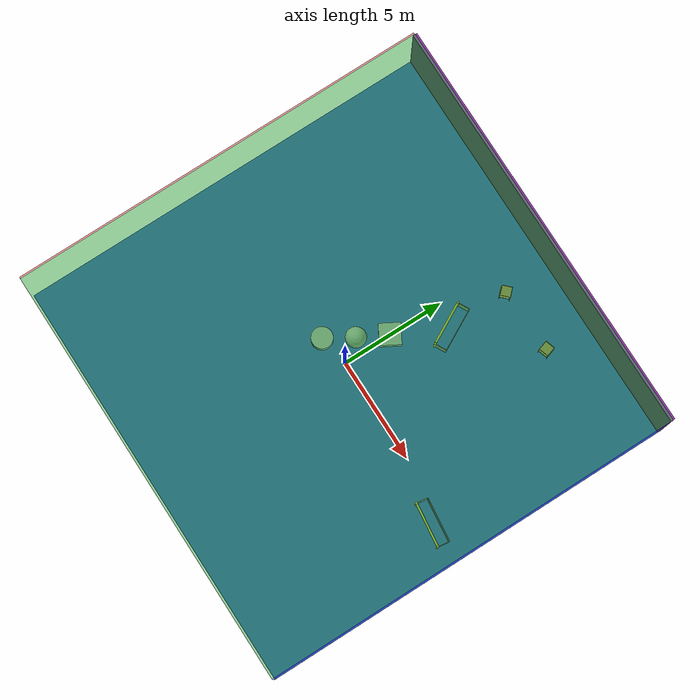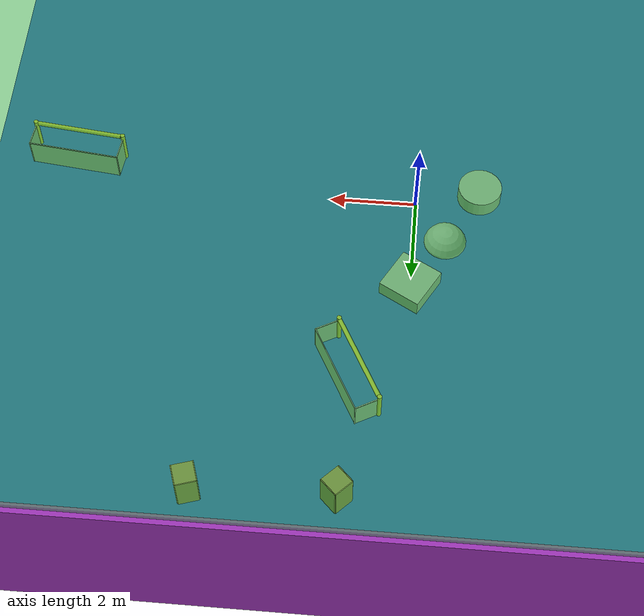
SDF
<sdf version="1.4">
 <world name="default">
  <physics type="ode">
   <max_step_size>0.001</max_step_size>
   <real_time_factor>1</real_time_factor>
   <real_time_update_rate>1000</real_time_update_rate>
   <gravity>0 0 -9.8</gravity>
  </physics>
  <scene><ambient>0.4 0.4 0.4 1</ambient><background>0.7 0.7 0.7 1</background><shadows>1</shadows></scene>
  <model name="Surrounding">
   <static>1</static>
   <link name="Ceiling">
    <collision name="Ceiling_Collision"><geometry><box><size>20 20 0.1</size></box></geometry></collision>
    <visual name="Ceiling_Visual">
     <geometry><box><size>20 20 0.1</size></box></geometry>
     <material>
      <script><uri>file://media/materials/scripts/gazebo.material</uri><name>Gazebo/GreenTransparent</name></script>
     </material>
    </visual>
    <pose>0 0 4.05 0 0 0</pose>
   </link>
   <link name="Wall_South">
    <collision name="Wall_South_Collision">
     <geometry><box><size>20 0 4</size></box></geometry>
     <pose>0 0 2 0 -0 0</pose>
    </collision>
    <visual name="Wall_South_Visual">
     <pose>0 0 2 0 -0 0</pose>
     <geometry><box><size>20 0 4</size></box></geometry>
     <material>
      <script><uri>file://media/materials/scripts/gazebo.material</uri><name>Gazebo/GreyTransparent</name></script>
     </material>
    </visual>
    <velocity_decay><linear>0</linear><angular>0</angular></velocity_decay>
    <pose>0 -10 0 0 -0 0</pose>
   </link>
   <link name="Wall_East">
    <collision name="Wall_21_Collision">
     <geometry><box><size>20 0 4</size></box></geometry>
     <pose>0 0 2 0 -0 0</pose>
    </collision>
    <visual name="Wall_21_Visual">
     <pose>0 0 2 0 -0 0</pose>
     <geometry><box><size>20 0 4</size></box></geometry>
     <material>
      <script><uri>file://media/materials/scripts/gazebo.material</uri><name>Gazebo/BlueTransparent</name></script>
     </material>
    </visual>
    <velocity_decay><linear>0</linear><angular>0</angular></velocity_decay>
    <pose>10 0 0 0 -0 1.5708</pose>
   </link>
   <link name="Wall_North">
    <collision name="Wall_22_Collision">
     <geometry><box><size>20 0.2 4</size></box></geometry>
     <pose>0 0 2 0 -0 0</pose>
    </collision>
    <visual name="Wall_22_Visual">
     <pose>0 0 2 0 -0 0</pose>
     <geometry><box><size>20 0.2 4</size></box></geometry>
     <material>
      <script><uri>file://media/materials/scripts/gazebo.material</uri><name>Gazebo/PurpleGlow</name></script>
     </material>
    </visual>
    <velocity_decay><linear>0</linear><angular>0</angular></velocity_decay>
    <pose>0 10 0 0 -0 0</pose>
   </link>
   <link name="Wall_West">
    <collision name="Wall_23_Collision">
     <geometry><box><size>20 0.2 4</size></box></geometry>
     <pose>0 0 2 0 -0 0</pose>
    </collision>
    <visual name="Wall_23_Visual">
     <pose>0 0 2 0 -0 0</pose>
     <geometry><box><size>20 0.2 4</size></box></geometry>
     <material>
      <script><uri>file://media/materials/scripts/gazebo.material</uri><name>Gazebo/RedTransparent</name></script>
     </material>
    </visual>
    <velocity_decay><linear>0</linear><angular>0</angular></velocity_decay>
    <pose>-10 0 0 0 0 -1.5708</pose>
   </link>
   <link name="Ground_link">
    <collision name="collision">
     <pose>0 0 .05 0 -0 0</pose>
     <geometry><box><size>20 20 0.1</size></box></geometry>
    </collision>
    <visual name="visual">
     <pose>0 0 .05 0 -0 0</pose>
     <geometry><box><size>20 20 0.1</size></box></geometry>
     <material>
      <script><uri>file://media/materials/scripts/gazebo.material</uri><name>Gazebo/BlueGlow</name></script>
     </material>
    </visual>
   </link>
   <static>1</static>
  </model>
  <spherical_coordinates>
   <surface_model>EARTH_WGS84</surface_model>
   <latitude_deg>0</latitude_deg>
   <longitude_deg>0</longitude_deg>
   <elevation>0</elevation>
   <heading_deg>0</heading_deg>
  </spherical_coordinates>
  <light name="lightball_0" type="diffuse">
   <diffuse>0.8 0.8 0.8 1</diffuse>
   <specular>0.2 0.2 0.2 1</specular>
   <attenuation>
    <range>100</range>
    <constant>0.7</constant>
    <linear>0.01</linear>
    <quadratic>0.001</quadratic>
   </attenuation>
   <direction>-0.5 0.1 -0.9</direction>
   <pose>6.0759026033 2.29696041028 1.79981327166 0 0 0</pose>
  </light>
  <light name="lightball_1" type="diffuse">
   <diffuse>0.8 0.8 0.8 1</diffuse>
   <specular>0.2 0.2 0.2 1</specular>
   <attenuation>
    <range>100</range>
    <constant>0.7</constant>
    <linear>0.01</linear>
    <quadratic>0.001</quadratic>
   </attenuation>
   <direction>-0.5 0.1 -0.9</direction>
   <pose>7.67446962767 5.42035108888 3.78124582337 0 0 0</pose>
  </light>
  <light name="lightball_2" type="diffuse">
   <diffuse>0.8 0.8 0.8 1</diffuse>
   <specular>0.2 0.2 0.2 1</specular>
   <attenuation>
    <range>100</range>
    <constant>0.7</constant>
    <linear>0.01</linear>
    <quadratic>0.001</quadratic>
   </attenuation>
   <direction>-0.5 0.1 -0.9</direction>
   <pose>3.18357127409 8.82662076402 2.27872426036 0 0 0</pose>
  </light>
  <light name="lightball_3" type="diffuse">
   <diffuse>0.8 0.8 0.8 1</diffuse>
   <specular>0.2 0.2 0.2 1</specular>
   <attenuation>
    <range>100</range>
    <constant>0.7</constant>
    <linear>0.01</linear>
    <quadratic>0.001</quadratic>
   </attenuation>
   <direction>-0.5 0.1 -0.9</direction>
   <pose>7.27601555481 8.59015304522 0.536431728781 0 0 0</pose>
  </light>
  <light name="lightball_4" type="diffuse">
   <diffuse>0.8 0.8 0.8 1</diffuse>
   <specular>0.2 0.2 0.2 1</specular>
   <attenuation>
    <range>100</range>
    <constant>0.7</constant>
    <linear>0.01</linear>
    <quadratic>0.001</quadratic>
   </attenuation>
   <direction>-0.5 0.1 -0.9</direction>
   <pose>-6.49637611273 6.70317273196 1.80610456736 0 0 0</pose>
  </light>
  <light name="lightball_5" type="diffuse">
   <diffuse>0.8 0.8 0.8 1</diffuse>
   <specular>0.2 0.2 0.2 1</specular>
   <attenuation>
    <range>100</range>
    <constant>0.7</constant>
    <linear>0.01</linear>
    <quadratic>0.001</quadratic>
   </attenuation>
   <direction>-0.5 0.1 -0.9</direction>
   <pose>5.00554626256 -6.04173082535 2.10141879803 0 0 0</pose>
  </light>
  <light name="lightball_6" type="diffuse">
   <diffuse>0.8 0.8 0.8 1</diffuse>
   <specular>0.2 0.2 0.2 1</specular>
   <attenuation>
    <range>100</range>
    <constant>0.7</constant>
    <linear>0.01</linear>
    <quadratic>0.001</quadratic>
   </attenuation>
   <direction>-0.5 0.1 -0.9</direction>
   <pose>-7.99458734951 4.98549128736 0.70021182449 0 0 0</pose>
  </light>
  <light name="lightball_7" type="diffuse">
   <diffuse>0.8 0.8 0.8 1</diffuse>
   <specular>0.2 0.2 0.2 1</specular>
   <attenuation>
    <range>100</range>
    <constant>0.7</constant>
    <linear>0.01</linear>
    <quadratic>0.001</quadratic>
   </attenuation>
   <direction>-0.5 0.1 -0.9</direction>
   <pose>-3.87856470278 6.24500160798 2.03639824927 0 0 0</pose>
  </light>
  <light name="lightball_8" type="diffuse">
   <diffuse>0.8 0.8 0.8 1</diffuse>
   <specular>0.2 0.2 0.2 1</specular>
   <attenuation>
    <range>100</range>
    <constant>0.7</constant>
    <linear>0.01</linear>
    <quadratic>0.001</quadratic>
   </attenuation>
   <direction>-0.5 0.1 -0.9</direction>
   <pose>4.26289737565 8.99623553917 0.934019683209 0 0 0</pose>
  </light>
  <light name="lightball_9" type="diffuse">
   <diffuse>0.8 0.8 0.8 1</diffuse>
   <specular>0.2 0.2 0.2 1</specular>
   <attenuation>
    <range>100</range>
    <constant>0.7</constant>
    <linear>0.01</linear>
    <quadratic>0.001</quadratic>
   </attenuation>
   <direction>-0.5 0.1 -0.9</direction>
   <pose>-6.13231194599 -8.61888571583 1.1078669294 0 0 0</pose>
  </light>
  <include>
   <uri>model://textured_shapes</uri>
   <pose>-0.719859742002 1.02923899064 0 0 0 2.62849479199</pose>
  </include>
  <include>
   <uri>model://robocup_3Dsim_goal</uri>
   <pose>1.00128064426 4.65524165303 0 0 0 0.492608062029</pose>
  </include>
  <include><uri>model://cabinet</uri><pose>1.24274163983 7.61149760342 0 0 0 2.35805008442</pose></include>
  <include><uri>model://cabinet</uri><pose>4.33439870261 7.70660784551 0 0 0 1.88045036211</pose></include>
  <include>
   <uri>model://robocup_3Dsim_goal</uri>
   <pose>7.96833093583 -0.896575001746 0 0 0 1.4555697608</pose>
  </include>
 </world>
</sdf>

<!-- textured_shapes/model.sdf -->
<sdf version="1.6">
  <model name="textured_shapes">
    <pose>0 0 0.5 0 0 0</pose>
    <link name="box">
      <pose>0 -1.5 0 0 0 0</pose>
      <collision name="collision">
        <geometry>
          <box>
            <size>1 1 1</size>
          </box>
        </geometry>
      </collision>
      <visual name="visual">
        <geometry>
          <box>
            <size>1 1 1</size>
          </box>
        </geometry>
        <material>
          <script>
            <uri>model://../model_source/models/textured_shapes/materials/scripts</uri>
            <uri>model://../model_source/models/textured_shapes/materials/textures</uri>
            <name>TexturedShape/Squares</name>
          </script>
        </material>
      </visual>
    </link>
    <link name="sphere">
      <collision name="collision">
        <geometry>
          <sphere>
            <radius>0.5</radius>
          </sphere>
        </geometry>
      </collision>
      <visual name="visual">
        <geometry>
          <sphere>
            <radius>0.5</radius>
          </sphere>
        </geometry>
        <material>
          <script>
            <uri>model://../model_source/models/textured_shapes/materials/scripts</uri>
            <uri>model://../model_source/models/textured_shapes/materials/textures</uri>
            <name>TexturedShape/Squares</name>
          </script>
        </material>
      </visual>
    </link>
    <link name="cylinder">
      <pose>0 1.5 0 0 0 0</pose>
      <collision name="collision">
        <geometry>
          <cylinder>
            <radius>0.5</radius>
            <length>1</length>
          </cylinder>
        </geometry>
      </collision>
      <visual name="visual">
        <geometry>
          <cylinder>
            <radius>0.5</radius>
            <length>1</length>
          </cylinder>
        </geometry>
        <material>
          <script>
            <uri>model://../model_source/models/textured_shapes/materials/scripts</uri>
            <uri>model://../model_source/models/textured_shapes/materials/textures</uri>
            <name>TexturedShape/Squares</name>
          </script>
        </material>
      </visual>
    </link>
  </model>
</sdf>

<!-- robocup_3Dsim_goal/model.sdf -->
<sdf version="1.5">
  <model name="robocup_3d_goal">
    <static>true</static>
    <link name="left_post">
      <pose>0 1.05 0.45 0 0 0</pose>
      <collision name="collision">
        <geometry>
          <cylinder>
            <radius>0.05</radius>
            <length>0.9</length>
          </cylinder>
        </geometry>
      </collision>
      <visual name="visual">
        <geometry>
          <cylinder>
            <radius>0.05</radius>
            <length>0.9</length>
          </cylinder>
        </geometry>
        <material>
          <script>
            <uri>file://media/materials/scripts/gazebo.material</uri>
            <name>Gazebo/ZincYellow</name>
          </script>
        </material>
      </visual>
    </link>
    <link name="left_support_horiz_lower">
      <pose>0.30 1.05 0.01 0 0 0</pose>
      <collision name="collision">
        <geometry>
          <box>
            <size>0.50 0.02 0.02</size>
          </box>
        </geometry>
      </collision>
      <visual name="visual">
        <geometry>
          <box>
            <size>0.50 0.02 0.02</size>
          </box>
        </geometry>
        <material>
          <script>
            <uri>file://media/materials/scripts/gazebo.material</uri>
            <name>Gazebo/White</name>
          </script>
        </material>
      </visual>
    </link>
    <link name="left_support_horiz_upper">
      <pose>0.30 1.05 0.79 0 0 0</pose>
      <collision name="collision">
        <geometry>
          <box>
            <size>0.50 0.02 0.02</size>
          </box>
        </geometry>
      </collision>
      <visual name="visual">
        <geometry>
          <box>
            <size>0.50 0.02 0.02</size>
          </box>
        </geometry>
        <material>
          <script>
            <uri>file://media/materials/scripts/gazebo.material</uri>
            <name>Gazebo/White</name>
          </script>
        </material>
      </visual>
    </link>
    <link name="left_support_vertical">
      <pose>0.56 1.05 0.4 0 1.5708 0</pose>
      <collision name="collision">
        <geometry>
          <box>
            <size>0.80 0.02 0.02</size>
          </box>
        </geometry>
      </collision>
      <visual name="visual">
        <geometry>
          <box>
            <size>0.80 0.02 0.02</size>
          </box>
        </geometry>
        <material>
          <script>
            <uri>file://media/materials/scripts/gazebo.material</uri>
            <name>Gazebo/White</name>
          </script>
        </material>
      </visual>
    </link>
    <link name="right_support_horiz_lower">
      <pose>0.30 -1.05 0.01 0 0 0</pose>
      <collision name="collision">
        <geometry>
          <box>
            <size>0.50 0.02 0.02</size>
          </box>
        </geometry>
      </collision>
      <visual name="visual">
        <geometry>
          <box>
            <size>0.50 0.02 0.02</size>
          </box>
        </geometry>
        <material>
          <script>
            <uri>file://media/materials/scripts/gazebo.material</uri>
            <name>Gazebo/White</name>
          </script>
        </material>
      </visual>
    </link>
    <link name="right_support_horiz_upper">
      <pose>0.30 -1.05 0.79 0 0 0</pose>
      <collision name="collision">
        <geometry>
          <box>
            <size>0.50 0.02 0.02</size>
          </box>
        </geometry>
      </collision>
      <visual name="visual">
        <geometry>
          <box>
            <size>0.50 0.02 0.02</size>
          </box>
        </geometry>
        <material>
          <script>
            <uri>file://media/materials/scripts/gazebo.material</uri>
            <name>Gazebo/White</name>
          </script>
        </material>
      </visual>
    </link>
    <link name="right_support_vertical">
      <pose>0.56 -1.05 0.4 0 1.5708 0</pose>
      <collision name="collision">
        <geometry>
          <box>
            <size>0.80 0.02 0.02</size>
          </box>
        </geometry>
      </collision>
      <visual name="visual">
        <geometry>
          <box>
            <size>0.80 0.02 0.02</size>
          </box>
        </geometry>
        <material>
          <script>
            <uri>file://media/materials/scripts/gazebo.material</uri>
            <name>Gazebo/White</name>
          </script>
        </material>
      </visual>
    </link>
    <link name="center_support_horiz_lower">
      <pose>0.56 0 0.01 0 1.5708 0</pose>
      <collision name="collision">
        <geometry>
          <box>
            <size>0.02 2.08 0.02</size>
          </box>
        </geometry>
      </collision>
      <visual name="visual">
        <geometry>
          <box>
            <size>0.02 2.08 0.02</size>
          </box>
        </geometry>
        <material>
          <script>
            <uri>file://media/materials/scripts/gazebo.material</uri>
            <name>Gazebo/White</name>
          </script>
        </material>
      </visual>
    </link>
    <link name="center_support_horiz_upper">
      <pose>0.56 0 0.79 0 1.5708 0</pose>
      <collision name="collision">
        <geometry>
          <box>
            <size>0.02 2.08 0.02</size>
          </box>
        </geometry>
      </collision>
      <visual name="visual">
        <geometry>
          <box>
            <size>0.02 2.08 0.02</size>
          </box>
        </geometry>
        <material>
          <script>
            <uri>file://media/materials/scripts/gazebo.material</uri>
            <name>Gazebo/White</name>
          </script>
        </material>
      </visual>
    </link>
    <link name="right_post">
      <pose>0 -1.05 0.45 0 0 0</pose>
      <collision name="collision">
        <geometry>
          <cylinder>
            <radius>0.05</radius>
            <length>0.9</length>
          </cylinder>
        </geometry>
      </collision>
      <visual name="visual">
        <geometry>
          <cylinder>
            <radius>0.05</radius>
            <length>0.9</length>
          </cylinder>
        </geometry>
        <material>
          <script>
            <uri>file://media/materials/scripts/gazebo.material</uri>
            <name>Gazebo/ZincYellow</name>
          </script>
        </material>
      </visual>
    </link>
    <link name="crossbar">
      <pose>0 0 0.85 1.57 1.57 0</pose>
      <collision name="collision">
        <geometry>
          <cylinder>
            <radius>0.05</radius>
            <length>2.0</length>
          </cylinder>
        </geometry>
      </collision>
      <visual name="visual">
        <geometry>
          <cylinder>
            <radius>0.05</radius>
            <length>2.0</length>
          </cylinder>
        </geometry>
        <material>
          <script>
            <uri>file://media/materials/scripts/gazebo.material</uri>
            <name>Gazebo/ZincYellow</name>
          </script>
        </material>
      </visual>
    </link>
    <link name="center_net">
      <pose>0.56 0 0.40 0 0 0</pose>
      <collision name="collision">
        <geometry>
          <box>
            <size>0.01 2.1 0.80</size>
          </box>
        </geometry>
      </collision>
      <visual name="visual">
        <geometry>
          <box>
            <size>0.01 2.1 0.80</size>
          </box>
        </geometry>
        <material>
          <script>
            <uri>model://../model_source/models/robocup09_spl_field/materials/scripts/</uri>
            <uri>model://../model_source/models/robocup09_spl_field/materials/textures/</uri>
            <name>RoboCup/Net</name>
          </script>
        </material>
      </visual>
    </link>
    <link name="left_net">
      <pose>0.30 1.05 0.40 0 0 0</pose>
      <collision name="collision">
        <geometry>
          <box>
            <size>0.50 0.01 0.76</size>
          </box>
        </geometry>
      </collision>
      <visual name="visual">
        <geometry>
          <box>
            <size>0.50 0.01 0.76</size>
          </box>
        </geometry>
        <material>
          <script>
            <uri>model://../model_source/models/robocup09_spl_field/materials/scripts/</uri>
            <uri>model://../model_source/models/robocup09_spl_field/materials/textures/</uri>
            <name>RoboCup/Net</name>
          </script>
        </material>
      </visual>
    </link>
    <link name="right_net">
      <pose>0.30 -1.05 0.40 0 0 0</pose>
      <collision name="collision">
        <geometry>
          <box>
            <size>0.50 0.01 0.76</size>
          </box>
        </geometry>
      </collision>
      <visual name="visual">
        <geometry>
          <box>
            <size>0.50 0.01 0.76</size>
          </box>
        </geometry>
        <material>
          <script>
            <uri>model://../model_source/models/robocup09_spl_field/materials/scripts/</uri>
            <uri>model://../model_source/models/robocup09_spl_field/materials/textures/</uri>
            <name>RoboCup/Net</name>
          </script>
        </material>
      </visual>
    </link>
  </model>
</sdf>

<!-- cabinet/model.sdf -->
<sdf version="1.5">
  <model name="cabinet">
    <static>true</static>
    <link name="cabinet_bottom_plate">
      <inertial>
        <pose>0 0 -1 0 0 0</pose>
        <inertia>
          <ixx>2.050000</ixx>
          <ixy>0</ixy>
          <ixz>0</ixz>
          <iyy>2.050000</iyy>
          <iyz>0</iyz>
          <izz>2.050000</izz>
        </inertia>
        <mass>25.000000</mass>
      </inertial>
      <collision name="cabinet_bottom_plate_geom">
        <pose>0 0 0.010000 0 0 0</pose>
        <geometry>
          <box>
            <size>0.450000 0.450000 0.020000</size>
          </box>
        </geometry>
      </collision>
      <visual name="cabinet_bottom_plate_geom_visual">
        <pose>0 0 0.010000 0 0 0</pose>
        <geometry>
          <box>
            <size>0.450000 0.450000 0.020000</size>
          </box>
        </geometry>
        <material>
          <script>
            <uri>model://media/materials/scripts/gazebo.material</uri>
            <name>Gazebo/Wood</name>
          </script>
        </material>
      </visual>
      <collision name="cabinet_bottom_plate_geom_cabinet_back_plate">
        <pose>0.235000 0 0.510000 0 0 0</pose>
        <geometry>
          <box>
            <size>0.020000 0.450000 1.020000</size>
          </box>
        </geometry>
      </collision>
      <visual name="cabinet_bottom_plate_geom_cabinet_back_plate_visual">
        <pose>0.235000 0 0.510000 0 0 0</pose>
        <geometry>
          <box>
            <size>0.020000 0.450000 1.020000</size>
          </box>
        </geometry>
        <material>
          <script>
            <uri>model://media/materials/scripts/gazebo.material</uri>
            <name>Gazebo/Wood</name>
          </script>
        </material>
      </visual>
      <collision name="cabinet_bottom_plate_geom_cabinet_left_plate">
        <pose>0 0.235000 0.510000 0 0 0</pose>
        <geometry>
          <box>
            <size>0.450000 0.020000 1.020000</size>
          </box>
        </geometry>
      </collision>
      <visual name="cabinet_bottom_plate_geom_cabinet_left_plate_visual">
        <pose>0 0.235000 0.510000 0 0 0</pose>
        <geometry>
          <box>
            <size>0.450000 0.020000 1.020000</size>
          </box>
        </geometry>
        <material>
          <script>
            <uri>model://media/materials/scripts/gazebo.material</uri>
            <name>Gazebo/Wood</name>
          </script>
        </material>
      </visual>
      <collision name="cabinet_bottom_plate_geom_cabinet_middle_plate">
        <pose>0 0 0.510000 0 0 0</pose>
        <geometry>
          <box>
            <size>0.450000 0.450000 0.020000</size>
          </box>
        </geometry>
      </collision>
      <visual name="cabinet_bottom_plate_geom_cabinet_middle_plate_visual">
        <pose>0 0 0.510000 0 0 0</pose>
        <geometry>
          <box>
            <size>0.450000 0.450000 0.020000</size>
          </box>
        </geometry>
        <material>
          <script>
            <uri>model://media/materials/scripts/gazebo.material</uri>
            <name>Gazebo/Wood</name>
          </script>
        </material>
      </visual>
      <collision name="cabinet_bottom_plate_geom_cabinet_right_plate">
        <pose>0 -0.235000 0.510000 0 0 0</pose>
        <geometry>
          <box>
            <size>0.450000 0.020000 1.020000</size>
          </box>
        </geometry>
      </collision>
      <visual name="cabinet_bottom_plate_geom_cabinet_right_plate_visual">
        <pose>0 -0.235000 0.510000 0 0 0</pose>
        <geometry>
          <box>
            <size>0.450000 0.020000 1.020000</size>
          </box>
        </geometry>
        <material>
          <script>
            <uri>model://media/materials/scripts/gazebo.material</uri>
            <name>Gazebo/Wood</name>
          </script>
        </material>
      </visual>
      <collision name="cabinet_bottom_plate_geom_cabinet_top_plate">
        <pose>0 0 1.010000 0 0 0</pose>
        <geometry>
          <box>
            <size>0.450000 0.450000 0.020000</size>
          </box>
        </geometry>
      </collision>
      <visual name="cabinet_bottom_plate_geom_cabinet_top_plate_visual">
        <pose>0 0 1.010000 0 0 0</pose>
        <geometry>
          <box>
            <size>0.450000 0.450000 0.020000</size>
          </box>
        </geometry>
        <material>
          <script>
            <uri>model://media/materials/scripts/gazebo.material</uri>
            <name>Gazebo/Wood</name>
          </script>
        </material>
      </visual>
    </link>
  </model>
</sdf>
